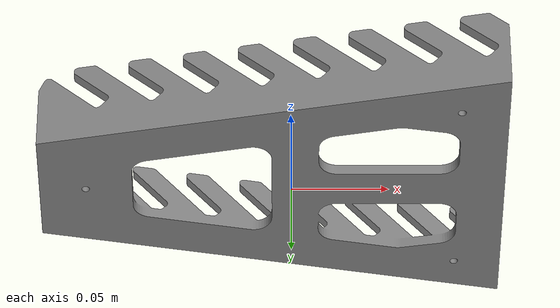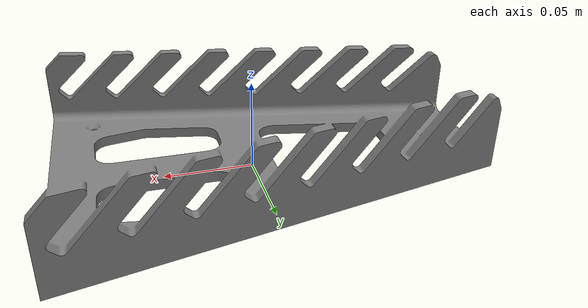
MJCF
<mujoco model="wrench_holder">
  <compiler angle="radian" meshdir="../meshes"/>

  <default>
    <!-- MATERIALS -->
    <default class="rigid_sticky">
      <geom solref="0.001 1"
            solimp="0.95 0.99 0.0005"
            friction="1.8 0.5 0.0005"/>
    </default>
    <default class="rigid_normal">
      <geom solref="0.001 1"
            solimp="0.95 0.99 0.0005"
            friction="1.0 0.3 0.0001"/>
    </default>
    <default class="rigid_slippy">
      <geom solref="0.001 1"
            solimp="0.95 0.99 0.0005"
            friction="0.6 0.2 0.0001"/>
    </default>
  </default>

  <asset>
    <mesh name="body" file="wrench_holder.STL"/>
  </asset>
  <worldbody>
    <body name="base_link" pos="0 0 0">
        <!-- No joint = body is rigidly fixed to the world -->
        <!-- Inertial properties computed automatically from mesh -->
        <geom
          type="mesh"
          class="rigid_sticky"
          mesh="body"
          mass="5.0"
          contype="1"
          conaffinity="1"
          group="1"
          density="0"/>
    </body>
  </worldbody>

  <!-- State sensors for state estimation simulation -->
  <sensor>
    <subtreecom    name="subtreecom"    body="base_link"/>
    <subtreelinvel name="subtreelinvel" body="base_link"/>
    <subtreeangmom name="subtreeangmom" body="base_link"/>
  </sensor>

</mujoco>
